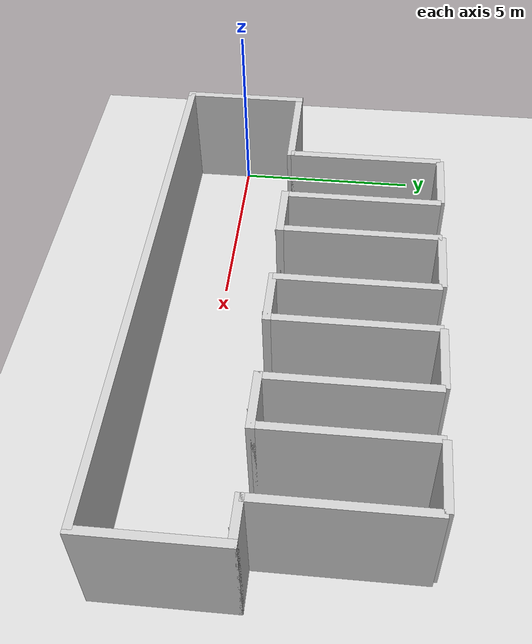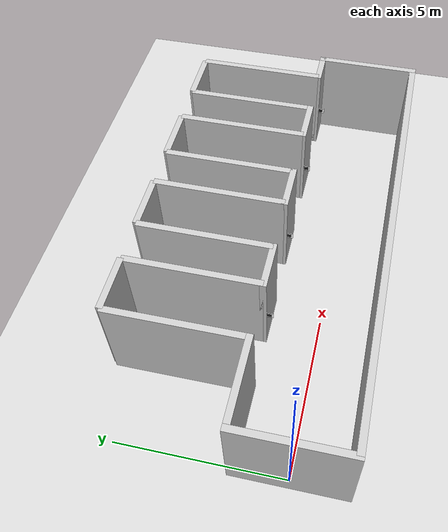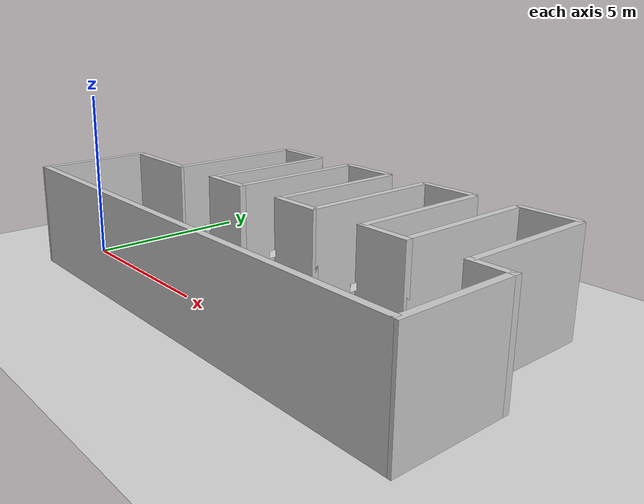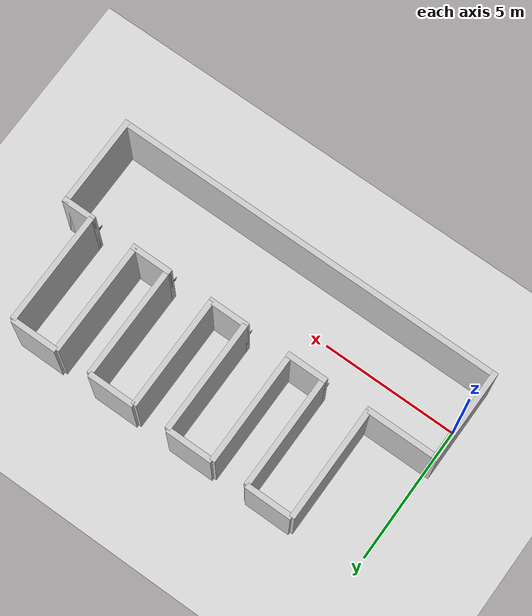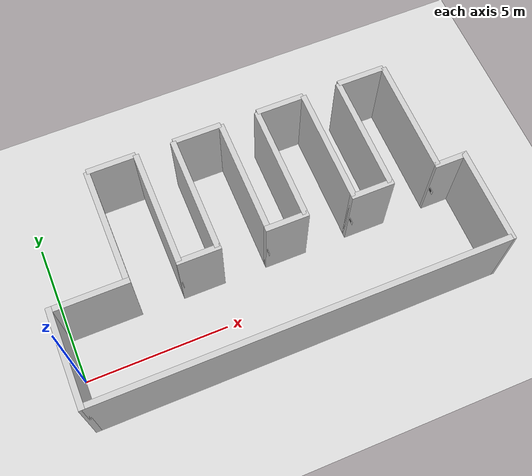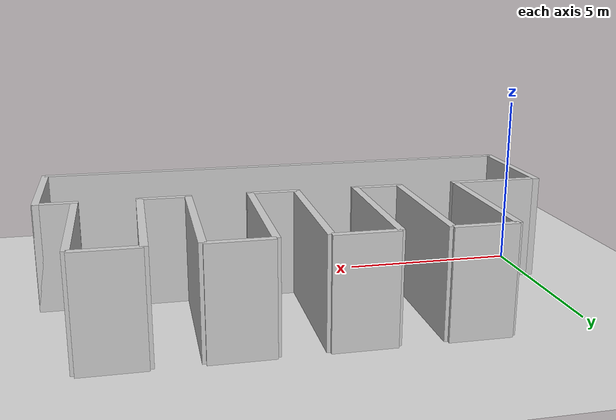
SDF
<?xml version="1.0"?>
<sdf version="1.9">
  <world name="corridor">

    <gravity>0 0 -9.8</gravity>
    <atmosphere type="adiabatic"/>

    <scene>
      <ambient>0.4 0.4 0.4 1</ambient>
      <background>0.7 0.7 0.7 1</background>
    </scene>

    <physics name="1ms" type="ode">
      <max_step_size>0.001</max_step_size>
      <real_time_factor>1.0</real_time_factor>
    </physics>

    <plugin filename="gz-sim-physics-system"          name="gz::sim::systems::Physics"/>
    <plugin filename="gz-sim-sensors-system"           name="gz::sim::systems::Sensors">
      <render_engine>ogre2</render_engine>
    </plugin>
    <plugin filename="gz-sim-scene-broadcaster-system" name="gz::sim::systems::SceneBroadcaster"/>
    <plugin filename="gz-sim-user-commands-system"    name="gz::sim::systems::UserCommands"/>

    <light type="directional" name="sun">
      <cast_shadows>true</cast_shadows>
      <pose>0 0 10 0 0 0</pose>
      <diffuse>0.9 0.9 0.9 1</diffuse>
      <specular>0.2 0.2 0.2 1</specular>
      <direction>-0.5 0.1 -0.9</direction>
    </light>

    <!-- Ceiling lights spaced along corridor -->
    <light type="point" name="light_0"><pose>2 0 2.8 0 0 0</pose>
      <diffuse>0.7 0.7 0.7 1</diffuse><specular>0.05 0.05 0.05 1</specular>
      <attenuation><range>8</range><constant>0.5</constant><linear>0.02</linear></attenuation></light>
    <light type="point" name="light_1"><pose>5 0 2.8 0 0 0</pose>
      <diffuse>0.7 0.7 0.7 1</diffuse><specular>0.05 0.05 0.05 1</specular>
      <attenuation><range>8</range><constant>0.5</constant><linear>0.02</linear></attenuation></light>
    <light type="point" name="light_2"><pose>9 0 2.8 0 0 0</pose>
      <diffuse>0.7 0.7 0.7 1</diffuse><specular>0.05 0.05 0.05 1</specular>
      <attenuation><range>8</range><constant>0.5</constant><linear>0.02</linear></attenuation></light>
    <light type="point" name="light_3"><pose>13 0 2.8 0 0 0</pose>
      <diffuse>0.7 0.7 0.7 1</diffuse><specular>0.05 0.05 0.05 1</specular>
      <attenuation><range>8</range><constant>0.5</constant><linear>0.02</linear></attenuation></light>

    <!-- Ground -->
    <model name="ground_plane">
      <static>true</static>
      <link name="link">
        <collision name="c"><geometry><plane><normal>0 0 1</normal><size>40 40</size></plane></geometry></collision>
        <visual name="v"><geometry><plane><normal>0 0 1</normal><size>40 40</size></plane></geometry>
          <material><ambient>0.85 0.85 0.85 1</ambient><diffuse>0.85 0.85 0.85 1</diffuse></material></visual>
      </link>
    </model>

    <!-- ── Corridor walls (x: 0..14,  y: −1.5..+1.5) ──────────── -->
    <!-- South corridor wall -->
    <model name="corr_wall_south">
      <static>true</static><pose>7 -1.6 1.5 0 0 0</pose>
      <link name="link">
        <collision name="c"><geometry><box><size>14.2 0.2 3.0</size></box></geometry></collision>
        <visual name="v"><geometry><box><size>14.2 0.2 3.0</size></box></geometry>
          <material><ambient>0.8 0.8 0.8 1</ambient></material></visual>
      </link>
    </model>

    <!-- North corridor wall (has door openings at each room) -->
    <!-- Segment 0: x=0..2.5 -->
    <model name="corr_wall_north_0">
      <static>true</static><pose>1.25 1.6 1.5 0 0 0</pose>
      <link name="link">
        <collision name="c"><geometry><box><size>2.5 0.2 3.0</size></box></geometry></collision>
        <visual name="v"><geometry><box><size>2.5 0.2 3.0</size></box></geometry>
          <material><ambient>0.8 0.8 0.8 1</ambient></material></visual>
      </link>
    </model>
    <!-- Room 301 door opening: x=2.5..4.0  (room at x=3.0, y=1.5..5.5) -->
    <!-- Segment 1: x=4.0..5.5 -->
    <model name="corr_wall_north_1">
      <static>true</static><pose>4.75 1.6 1.5 0 0 0</pose>
      <link name="link">
        <collision name="c"><geometry><box><size>1.5 0.2 3.0</size></box></geometry></collision>
        <visual name="v"><geometry><box><size>1.5 0.2 3.0</size></box></geometry>
          <material><ambient>0.8 0.8 0.8 1</ambient></material></visual>
      </link>
    </model>
    <!-- Room 303 door: x=5.5..7.0 -->
    <!-- Segment 2: x=7.0..8.5 -->
    <model name="corr_wall_north_2">
      <static>true</static><pose>7.75 1.6 1.5 0 0 0</pose>
      <link name="link">
        <collision name="c"><geometry><box><size>1.5 0.2 3.0</size></box></geometry></collision>
        <visual name="v"><geometry><box><size>1.5 0.2 3.0</size></box></geometry>
          <material><ambient>0.8 0.8 0.8 1</ambient></material></visual>
      </link>
    </model>
    <!-- Room 305 door: x=8.5..10.0 -->
    <!-- Segment 3: x=10.0..11.5 -->
    <model name="corr_wall_north_3">
      <static>true</static><pose>10.75 1.6 1.5 0 0 0</pose>
      <link name="link">
        <collision name="c"><geometry><box><size>1.5 0.2 3.0</size></box></geometry></collision>
        <visual name="v"><geometry><box><size>1.5 0.2 3.0</size></box></geometry>
          <material><ambient>0.8 0.8 0.8 1</ambient></material></visual>
      </link>
    </model>
    <!-- Room 307 door: x=11.5..13.0 -->
    <!-- Segment 4: x=13.0..14.2 -->
    <model name="corr_wall_north_4">
      <static>true</static><pose>13.6 1.6 1.5 0 0 0</pose>
      <link name="link">
        <collision name="c"><geometry><box><size>1.2 0.2 3.0</size></box></geometry></collision>
        <visual name="v"><geometry><box><size>1.2 0.2 3.0</size></box></geometry>
          <material><ambient>0.8 0.8 0.8 1</ambient></material></visual>
      </link>
    </model>

    <!-- West cap -->
    <model name="corr_wall_west">
      <static>true</static><pose>-0.1 0 1.5 0 0 0</pose>
      <link name="link">
        <collision name="c"><geometry><box><size>0.2 3.4 3.0</size></box></geometry></collision>
        <visual name="v"><geometry><box><size>0.2 3.4 3.0</size></box></geometry>
          <material><ambient>0.8 0.8 0.8 1</ambient></material></visual>
      </link>
    </model>
    <!-- East cap -->
    <model name="corr_wall_east">
      <static>true</static><pose>14.1 0 1.5 0 0 0</pose>
      <link name="link">
        <collision name="c"><geometry><box><size>0.2 3.4 3.0</size></box></geometry></collision>
        <visual name="v"><geometry><box><size>0.2 3.4 3.0</size></box></geometry>
          <material><ambient>0.8 0.8 0.8 1</ambient></material></visual>
      </link>
    </model>

    <!-- ── Rooms (simplified: back wall + side walls) ──────────── -->
    <!-- Room 301: x=2.5..4.0, y=1.6..5.6 -->
    <model name="room_301_back"><static>true</static><pose>3.25 5.7 1.5 0 0 0</pose>
      <link name="l"><collision name="c"><geometry><box><size>1.7 0.2 3.0</size></box></geometry></collision>
        <visual name="v"><geometry><box><size>1.7 0.2 3.0</size></box></geometry>
          <material><ambient>0.8 0.8 0.8 1</ambient></material></visual></link></model>
    <model name="room_301_west"><static>true</static><pose>2.4 3.65 1.5 0 0 0</pose>
      <link name="l"><collision name="c"><geometry><box><size>0.2 4.1 3.0</size></box></geometry></collision>
        <visual name="v"><geometry><box><size>0.2 4.1 3.0</size></box></geometry>
          <material><ambient>0.8 0.8 0.8 1</ambient></material></visual></link></model>
    <model name="room_301_east"><static>true</static><pose>4.1 3.65 1.5 0 0 0</pose>
      <link name="l"><collision name="c"><geometry><box><size>0.2 4.1 3.0</size></box></geometry></collision>
        <visual name="v"><geometry><box><size>0.2 4.1 3.0</size></box></geometry>
          <material><ambient>0.8 0.8 0.8 1</ambient></material></visual></link></model>

    <!-- Room 303: x=5.5..7.0 -->
    <model name="room_303_back"><static>true</static><pose>6.25 5.7 1.5 0 0 0</pose>
      <link name="l"><collision name="c"><geometry><box><size>1.7 0.2 3.0</size></box></geometry></collision>
        <visual name="v"><geometry><box><size>1.7 0.2 3.0</size></box></geometry>
          <material><ambient>0.8 0.8 0.8 1</ambient></material></visual></link></model>
    <model name="room_303_west"><static>true</static><pose>5.4 3.65 1.5 0 0 0</pose>
      <link name="l"><collision name="c"><geometry><box><size>0.2 4.1 3.0</size></box></geometry></collision>
        <visual name="v"><geometry><box><size>0.2 4.1 3.0</size></box></geometry>
          <material><ambient>0.8 0.8 0.8 1</ambient></material></visual></link></model>
    <model name="room_303_east"><static>true</static><pose>7.1 3.65 1.5 0 0 0</pose>
      <link name="l"><collision name="c"><geometry><box><size>0.2 4.1 3.0</size></box></geometry></collision>
        <visual name="v"><geometry><box><size>0.2 4.1 3.0</size></box></geometry>
          <material><ambient>0.8 0.8 0.8 1</ambient></material></visual></link></model>

    <!-- Room 305: x=8.5..10.0 -->
    <model name="room_305_back"><static>true</static><pose>9.25 5.7 1.5 0 0 0</pose>
      <link name="l"><collision name="c"><geometry><box><size>1.7 0.2 3.0</size></box></geometry></collision>
        <visual name="v"><geometry><box><size>1.7 0.2 3.0</size></box></geometry>
          <material><ambient>0.8 0.8 0.8 1</ambient></material></visual></link></model>
    <model name="room_305_west"><static>true</static><pose>8.4 3.65 1.5 0 0 0</pose>
      <link name="l"><collision name="c"><geometry><box><size>0.2 4.1 3.0</size></box></geometry></collision>
        <visual name="v"><geometry><box><size>0.2 4.1 3.0</size></box></geometry>
          <material><ambient>0.8 0.8 0.8 1</ambient></material></visual></link></model>
    <model name="room_305_east"><static>true</static><pose>10.1 3.65 1.5 0 0 0</pose>
      <link name="l"><collision name="c"><geometry><box><size>0.2 4.1 3.0</size></box></geometry></collision>
        <visual name="v"><geometry><box><size>0.2 4.1 3.0</size></box></geometry>
          <material><ambient>0.8 0.8 0.8 1</ambient></material></visual></link></model>

    <!-- Room 307: x=11.5..13.0 -->
    <model name="room_307_back"><static>true</static><pose>12.25 5.7 1.5 0 0 0</pose>
      <link name="l"><collision name="c"><geometry><box><size>1.7 0.2 3.0</size></box></geometry></collision>
        <visual name="v"><geometry><box><size>1.7 0.2 3.0</size></box></geometry>
          <material><ambient>0.8 0.8 0.8 1</ambient></material></visual></link></model>
    <model name="room_307_west"><static>true</static><pose>11.4 3.65 1.5 0 0 0</pose>
      <link name="l"><collision name="c"><geometry><box><size>0.2 4.1 3.0</size></box></geometry></collision>
        <visual name="v"><geometry><box><size>0.2 4.1 3.0</size></box></geometry>
          <material><ambient>0.8 0.8 0.8 1</ambient></material></visual></link></model>
    <model name="room_307_east"><static>true</static><pose>13.1 3.65 1.5 0 0 0</pose>
      <link name="l"><collision name="c"><geometry><box><size>0.2 4.1 3.0</size></box></geometry></collision>
        <visual name="v"><geometry><box><size>0.2 4.1 3.0</size></box></geometry>
          <material><ambient>0.8 0.8 0.8 1</ambient></material></visual></link></model>

    <!-- ── Room signs (on corridor wall beside each door) ─────── -->
    <!-- Sign for 301 — on east side of door frame, at 1.5 m height -->
    <model name="sign_301">
      <static>true</static><pose>4.05 1.5 1.5 0 0 -1.5708</pose>
      <link name="s">
        <visual name="p"><geometry><box><size>0.4 0.01 0.2</size></box></geometry>
          <material><ambient>1 1 1 1</ambient><diffuse>1 1 1 1</diffuse></material></visual>
        <visual name="t"><pose>0 -0.006 0 0 0 0</pose>
          <geometry><box><size>0.28 0.01 0.12</size></box></geometry>
          <material><ambient>0.1 0.1 0.1 1</ambient><diffuse>0.1 0.1 0.1 1</diffuse></material></visual>
      </link>
    </model>

    <model name="sign_303">
      <static>true</static><pose>7.05 1.5 1.5 0 0 -1.5708</pose>
      <link name="s">
        <visual name="p"><geometry><box><size>0.4 0.01 0.2</size></box></geometry>
          <material><ambient>1 1 1 1</ambient><diffuse>1 1 1 1</diffuse></material></visual>
        <visual name="t"><pose>0 -0.006 0 0 0 0</pose>
          <geometry><box><size>0.28 0.01 0.12</size></box></geometry>
          <material><ambient>0.1 0.1 0.1 1</ambient><diffuse>0.1 0.1 0.1 1</diffuse></material></visual>
      </link>
    </model>

    <model name="sign_305">
      <static>true</static><pose>10.05 1.5 1.5 0 0 -1.5708</pose>
      <link name="s">
        <visual name="p"><geometry><box><size>0.4 0.01 0.2</size></box></geometry>
          <material><ambient>1 1 1 1</ambient><diffuse>1 1 1 1</diffuse></material></visual>
        <visual name="t"><pose>0 -0.006 0 0 0 0</pose>
          <geometry><box><size>0.28 0.01 0.12</size></box></geometry>
          <material><ambient>0.1 0.1 0.1 1</ambient><diffuse>0.1 0.1 0.1 1</diffuse></material></visual>
      </link>
    </model>

    <model name="sign_307">
      <static>true</static><pose>13.05 1.5 1.5 0 0 -1.5708</pose>
      <link name="s">
        <visual name="p"><geometry><box><size>0.4 0.01 0.2</size></box></geometry>
          <material><ambient>1 1 1 1</ambient><diffuse>1 1 1 1</diffuse></material></visual>
        <visual name="t"><pose>0 -0.006 0 0 0 0</pose>
          <geometry><box><size>0.28 0.01 0.12</size></box></geometry>
          <material><ambient>0.1 0.1 0.1 1</ambient><diffuse>0.1 0.1 0.1 1</diffuse></material></visual>
      </link>
    </model>

    <!-- Robot spawn: west end of corridor, facing east -->
    <!-- spawn_pose: 0.5 0 0.1   rpy: 0 0 0 -->

  </world>
</sdf>
